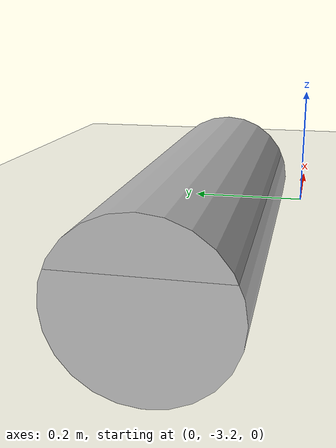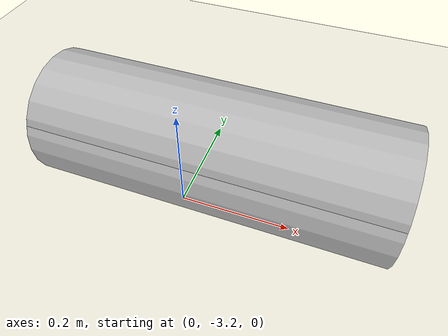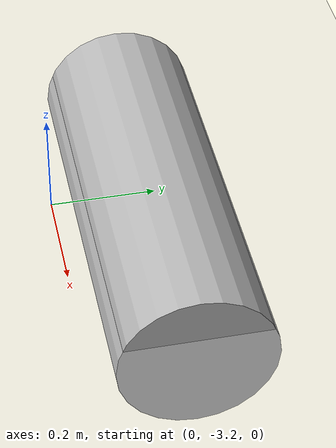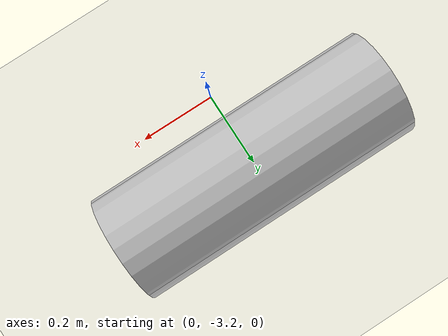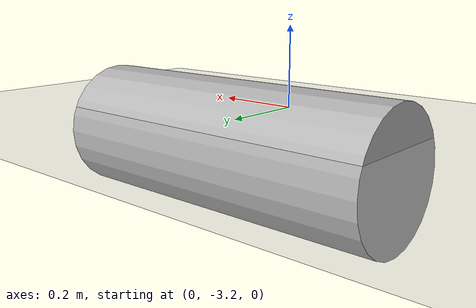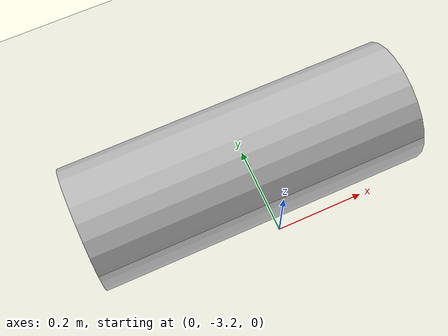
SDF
<?xml version="1.0" ?>
<sdf version="1.6">
    <world name="default">
        <gui>
            <plugin name="keyboard" filename="libKeyboardGUIPlugin.so"/>
        </gui>

        <include>
            <uri>model://sun</uri>
        </include>

        <include>
            <uri>model://ground_plane</uri>
        </include>

<model name="cylinder_obstacle">
            <static>true</static>
            <pose>0 -3 -0.06 0 0 0</pose>
            <link name="cylinder">
                <collision name="cylinder_collision">
                    <pose frame="">0 0 0 0 1.570796327 0</pose>
                    <geometry>
                        <cylinder>
                            <radius>0.15</radius>
                            <length>0.8</length>
                        </cylinder>
                    </geometry>
                    <surface>
                        <friction>
                            <ode>
                                <mu>1</mu>
                            </ode>
                        </friction>
                    </surface>
                </collision>
                <visual name="cylinder_visual">
                    <pose frame="">0 0 0 0 1.570796327 0</pose>
                    <geometry>
                        <cylinder>
                            <radius>0.15</radius>
                            <length>0.8</length>
                        </cylinder>
                    </geometry>
                </visual>
            </link>
        </model>
    </world>
</sdf>
